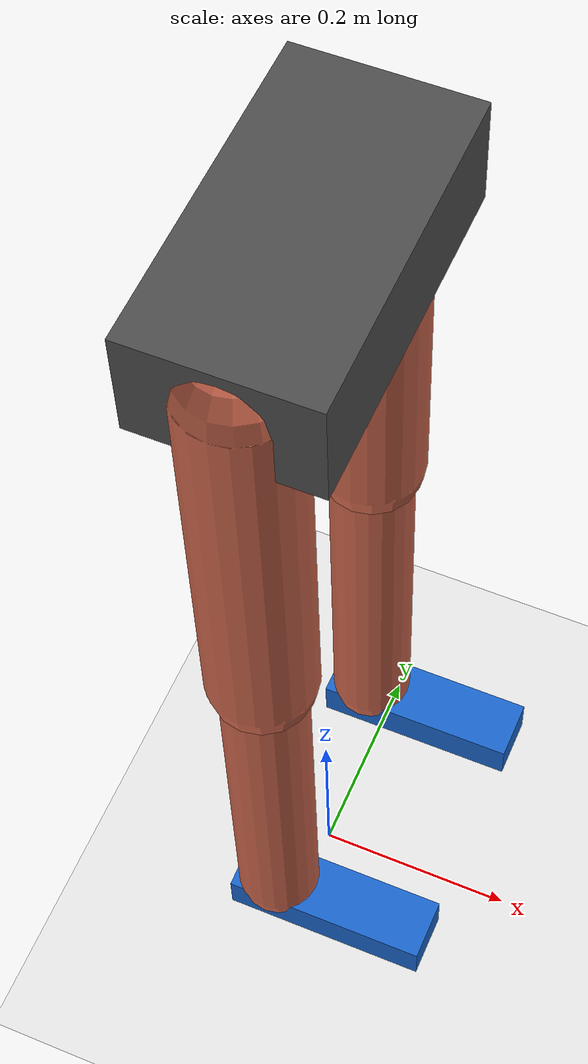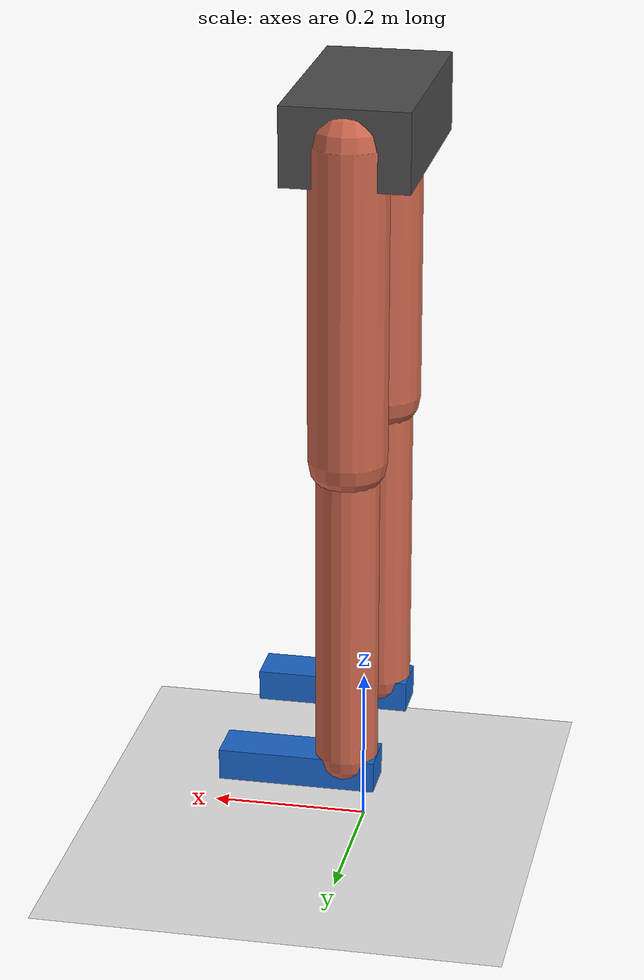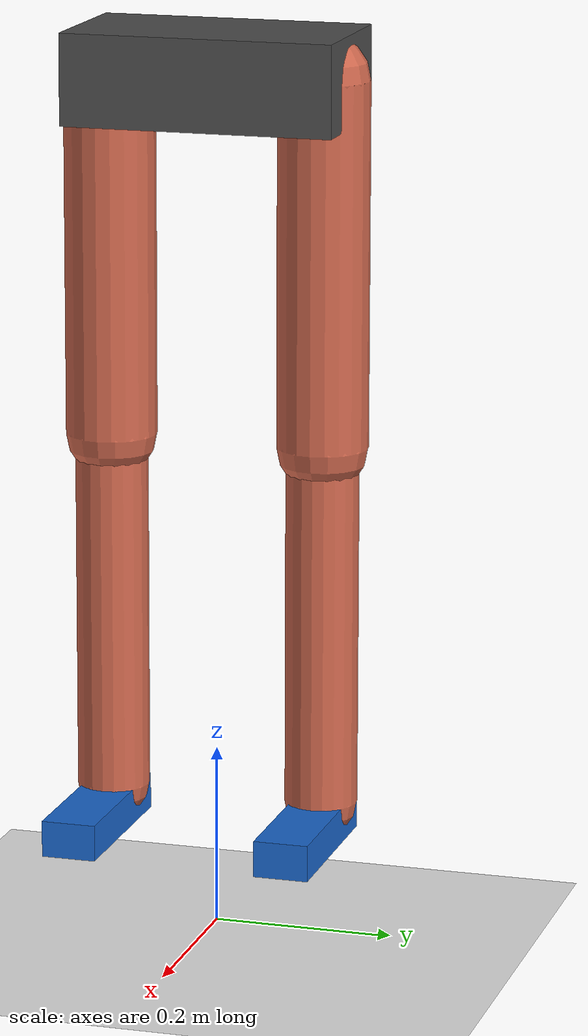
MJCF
<mujoco model="bipedo_protesico_v1">
  <compiler angle="degree" coordinate="local" inertiafromgeom="true"/>
  <option timestep="0.002" gravity="0 0 -9.81" integrator="RK4"/>

  <!-- CABECERA DE CLASES Y COMPONENTES POR DEFECTO -->
  <default>
    <default class="sagital">
      <joint type="hinge" axis="0 1 0" damping="0.05"/>
    </default>
    <default class="colision">
      <geom type="capsule" density="1000" friction="0.9 0.05 0.0001" rgba="0.7 0.7 0.7 0.3"/>
    </default>
    <default class="biologico">
      <geom type="capsule" contype="0" conaffinity="0" rgba="0.8 0.4 0.3 1"/>
    </default>
    <default class="protesico">
      <geom contype="0" conaffinity="0" rgba="0.1 0.4 0.8 1"/>
    </default>
  </default>

  <worldbody>
    <light pos="0 -2 3" dir="0 2 -3" diffuse="0.8 0.8 0.8"/>
    <geom name="suelo" type="plane" size="3 3 0.1" rgba="0.9 0.9 0.9 1" friction="1 0.005 0.0001"/>

    <!-- PELVIS / CADERA CENTRAL (Suspendida fija a 0.95m de altura) -->
    <body name="pelvis" pos="0 0 0.95">
      <!-- Geometría visual de la pelvis (caja central) -->
      <geom name="vis_pelvis" class="biologico" type="box" size="0.08 0.15 0.05" rgba="0.3 0.3 0.3 1"/>

      <!-- ================= PIERNA DERECHA (Desplazada Y = -0.12m) ================= -->
      <body name="femur_der" pos="0 -0.12 0">
        <joint name="cadera_der" class="sagital" range="-45 90"/>
        <geom name="vis_muslo_der" class="biologico" fromto="0 0 0 0 0 -0.4" size="0.05"/>
        <geom name="col_muslo_der" class="colision" fromto="0 0 0 0 0 -0.4" size="0.05"/>

        <body name="tibia_der" pos="0 0 -0.4">
          <joint name="rodilla_der" class="sagital" axis="0 1 0" range="-5 130"/>
          <geom name="vis_tibia_der" class="biologico" fromto="0 0 0 0 0 -0.4" size="0.04"/>
          <geom name="col_tibia_der" class="colision" fromto="0 0 0 0 0 -0.4" size="0.04"/>

          <body name="pie_protesico_der" pos="0 0 -0.4">
            <joint name="tobillo_der" class="sagital" range="-30 30" stiffness="35" damping="1.5"/>
            <geom name="vis_pie_der" class="protesico" type="box" pos="0.06 0 -0.02" size="0.1 0.03 0.02"/>
            <geom name="col_pie_der" class="colision" type="box" pos="0.06 0 -0.02" size="0.1 0.03 0.02"/>
          </body>
        </body>
      </body>

      <!-- ================= PIERNA IZQUIERDA (Desplazada Y = +0.12m) ================= -->
      <body name="femur_izq" pos="0 0.12 0">
        <joint name="cadera_izq" class="sagital" range="-45 90"/>
        <geom name="vis_muslo_izq" class="biologico" fromto="0 0 0 0 0 -0.4" size="0.05"/>
        <geom name="col_muslo_izq" class="colision" fromto="0 0 0 0 0 -0.4" size="0.05"/>

        <body name="tibia_izq" pos="0 0 -0.4">
          <joint name="rodilla_izq" class="sagital" axis="0 1 0" range="-5 130"/>
          <geom name="vis_tibia_izq" class="biologico" fromto="0 0 0 0 0 -0.4" size="0.04"/>
          <geom name="col_tibia_izq" class="colision" fromto="0 0 0 0 0 -0.4" size="0.04"/>

          <body name="pie_protesico_izq" pos="0 0 -0.4">
            <joint name="tobillo_izq" class="sagital" range="-30 30" stiffness="35" damping="1.5"/>
            <geom name="vis_pie_izq" class="protesico" type="box" pos="0.06 0 -0.02" size="0.1 0.03 0.02"/>
            <geom name="col_pie_izq" class="colision" type="box" pos="0.06 0 -0.02" size="0.1 0.03 0.02"/>
          </body>
        </body>
      </body>

    </body>
  </worldbody>

  <!-- 4 ACTUADORES: Cadera y rodilla para cada pierna -->
  <actuator>
    <motor name="motor_cadera_der" joint="cadera_der" gear="50" ctrllimited="true" ctrlrange="-100 100"/>
    <motor name="motor_rodilla_der" joint="rodilla_der" gear="50" ctrllimited="true" ctrlrange="-100 100"/>
    <motor name="motor_cadera_izq" joint="cadera_izq" gear="50" ctrllimited="true" ctrlrange="-100 100"/>
    <motor name="motor_rodilla_izq" joint="rodilla_izq" gear="50" ctrllimited="true" ctrlrange="-100 100"/>
  </actuator>
</mujoco>
